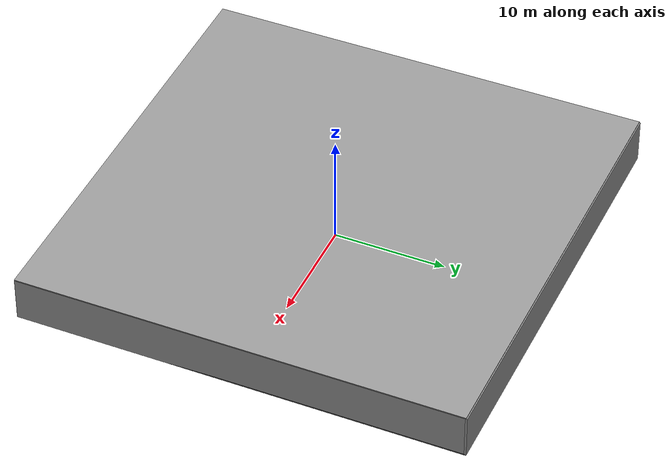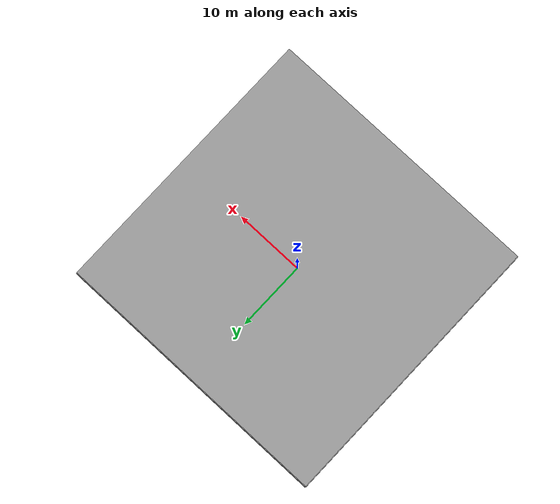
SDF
<?xml version="1.0"?>
<sdf version='1.4'>
  <world name='default'>
    <physics type='ode'>
      <max_step_size>0.001</max_step_size>
      <real_time_factor>1</real_time_factor>
      <real_time_update_rate>1000</real_time_update_rate>
      <gravity>0 0 -9.8</gravity>
    </physics>
    <scene>
      <ambient>0.4 0.4 0.4 1</ambient>
      <background>0.7 0.7 0.7 1</background>
      <shadows>1</shadows>
    </scene>
    <model name='Surrounding'>
      <static>1</static>
			<link name='Ceiling'>
        <collision name='Ceiling_Collision'>
          <geometry>
            <box>
              <size>40 40 0.1</size>
            </box>
          </geometry>
          <max_contacts>10</max_contacts>
          <surface>
            <bounce/>
            <friction>
              <ode/>
            </friction>
            <contact>
              <ode/>
            </contact>
          </surface>
        </collision>
        <visual name='Ceiling_Visual'>
          <geometry>
            <box>
              <size>40 40 0.1</size>
            </box>
          </geometry>
          <material>
            <script>
              <uri>file://media/materials/scripts/gazebo.material</uri>
              <name>Gazebo/Grey</name>
            </script>
          </material>
        </visual>
        <pose>0 0 4.05 0 0 0</pose>
        <self_collide>0</self_collide>
        <kinematic>0</kinematic>
        <gravity>1</gravity>
      </link>
      <link name='Wall_South'>
        <collision name='Wall_South_Collision'>
          <geometry>
            <box>
              <size>40 0 4</size>
            </box>
          </geometry>
          <pose>0 0 2 0 -0 0</pose>
          <max_contacts>10</max_contacts>
          <surface>
            <bounce/>
            <friction>
              <ode/>
            </friction>
            <contact>
              <ode/>
            </contact>
          </surface>
        </collision>
        <visual name='Wall_South_Visual'>
          <pose>0 0 2 0 -0 0</pose>
          <geometry>
            <box>
              <size>40 0 4</size>
            </box>
          </geometry>
          <material>
            <script>
              <uri>file://media/materials/scripts/gazebo.material</uri>
              <name>Gazebo/Grey</name>
            </script>
          </material>
        </visual>
        <velocity_decay>
          <linear>0</linear>
          <angular>0</angular>
        </velocity_decay>
        <pose>0 -20 0 0 -0 0</pose>
        <self_collide>0</self_collide>
        <kinematic>0</kinematic>
        <gravity>1</gravity>
      </link>
      <link name='Wall_East'>
        <collision name='Wall_21_Collision'>
          <geometry>
            <box>
              <size>40 0 4</size>
            </box>
          </geometry>
          <pose>0 0 2 0 -0 0</pose>
          <max_contacts>10</max_contacts>
          <surface>
            <bounce/>
            <friction>
              <ode/>
            </friction>
            <contact>
              <ode/>
            </contact>
          </surface>
        </collision>
        <visual name='Wall_21_Visual'>
          <pose>0 0 2 0 -0 0</pose>
          <geometry>
            <box>
              <size>40 0 4</size>
            </box>
          </geometry>
          <material>
            <script>
              <uri>file://media/materials/scripts/gazebo.material</uri>
              <name>Gazebo/Grey</name>
            </script>
          </material>
        </visual>
        <velocity_decay>
          <linear>0</linear>
          <angular>0</angular>
        </velocity_decay>
        <pose>20 0 0 0 -0 1.5708</pose>
        <self_collide>0</self_collide>
        <kinematic>0</kinematic>
        <gravity>1</gravity>
      </link>
      <link name='Wall_North'>
        <collision name='Wall_22_Collision'>
          <geometry>
            <box>
              <size>40 0.2 4</size>
            </box>
          </geometry>
          <pose>0 0 2 0 -0 0</pose>
          <max_contacts>10</max_contacts>
          <surface>
            <bounce/>
            <friction>
              <ode/>
            </friction>
            <contact>
              <ode/>
            </contact>
          </surface>
        </collision>
        <visual name='Wall_22_Visual'>
          <pose>0 0 2 0 -0 0</pose>
          <geometry>
            <box>
              <size>40 0.2 4</size>
            </box>
          </geometry>
          <material>
            <script>
              <uri>file://media/materials/scripts/gazebo.material</uri>
              <name>Gazebo/Grey</name>
            </script>
          </material>
        </visual>
        <velocity_decay>
          <linear>0</linear>
          <angular>0</angular>
        </velocity_decay>
        <pose>0 20 0 0 -0 0</pose>
        <self_collide>0</self_collide>
        <kinematic>0</kinematic>
        <gravity>1</gravity>
      </link>
      <link name='Wall_West'>
        <collision name='Wall_23_Collision'>
          <geometry>
            <box>
              <size>40 0.2 4</size>
            </box>
          </geometry>
          <pose>0 0 2 0 -0 0</pose>
          <max_contacts>10</max_contacts>
          <surface>
            <bounce/>
            <friction>
              <ode/>
            </friction>
            <contact>
              <ode/>
            </contact>
          </surface>
        </collision>
        <visual name='Wall_23_Visual'>
          <pose>0 0 2 0 -0 0</pose>
          <geometry>
            <box>
              <size>40 0.2 4</size>
            </box>
          </geometry>
          <material>
            <script>
              <uri>file://media/materials/scripts/gazebo.material</uri>
              <name>Gazebo/Grey</name>
            </script>
          </material>
        </visual>
        <velocity_decay>
          <linear>0</linear>
          <angular>0</angular>
        </velocity_decay>
        <pose>-20 0 0 0 0 -1.5708</pose>
        <self_collide>0</self_collide>
        <kinematic>0</kinematic>
        <gravity>1</gravity>
      </link>
			<link name="Ground_link">
        <collision name="collision">
					<pose>0 0 .05 0 -0 0</pose>
          <geometry>
            <box>
              <size>40 40 0.1</size>
            </box>
          </geometry>
          <max_contacts>10</max_contacts>
          <surface>
            <bounce />
            <friction>
              <ode />
            </friction>
            <contact>
              <ode />
            </contact>
          </surface>
        </collision>
        <visual name="visual">
					<pose>0 0 .05 0 -0 0</pose>
          <cast_shadows>1</cast_shadows>
          <geometry>
            <box>
              <size>40 40 0.1</size>
            </box>
          </geometry>
          <material>
            <script>
              <uri>file://media/materials/scripts/gazebo.material</uri>
              <name>Gazebo/Road</name>
            </script>
          </material>
        </visual>
      </link>
      <static>1</static>
    </model>
    <gui fullscreen='0'>
      <camera name='user_camera'>
        <pose>5.55028 19.2371 7.66404 0 0.296 -1.94838</pose>
        <view_controller>orbit</view_controller>
      </camera>
    </gui>
    <spherical_coordinates>
      <surface_model>EARTH_WGS84</surface_model>
      <latitude_deg>0</latitude_deg>
      <longitude_deg>0</longitude_deg>
      <elevation>0</elevation>
      <heading_deg>0</heading_deg>
    </spherical_coordinates>
  </world>
</sdf>
